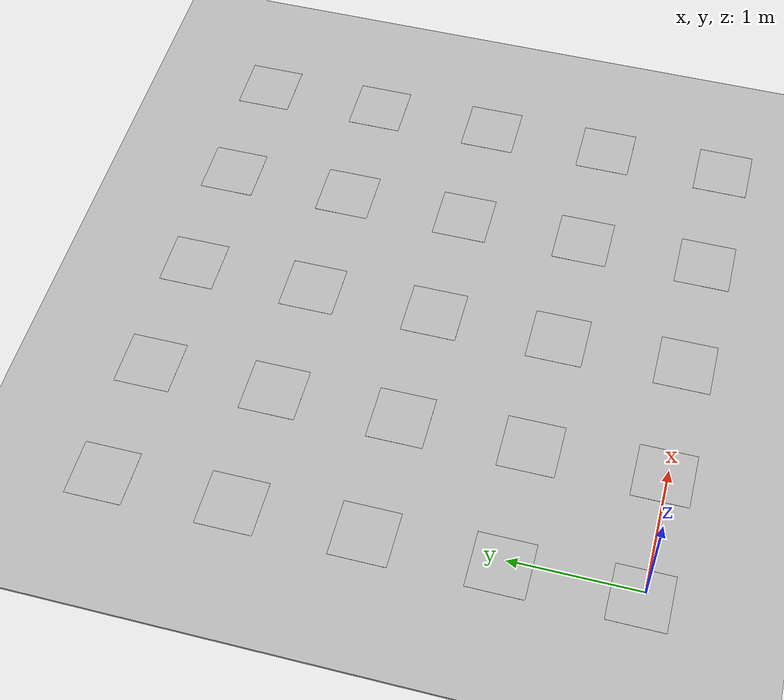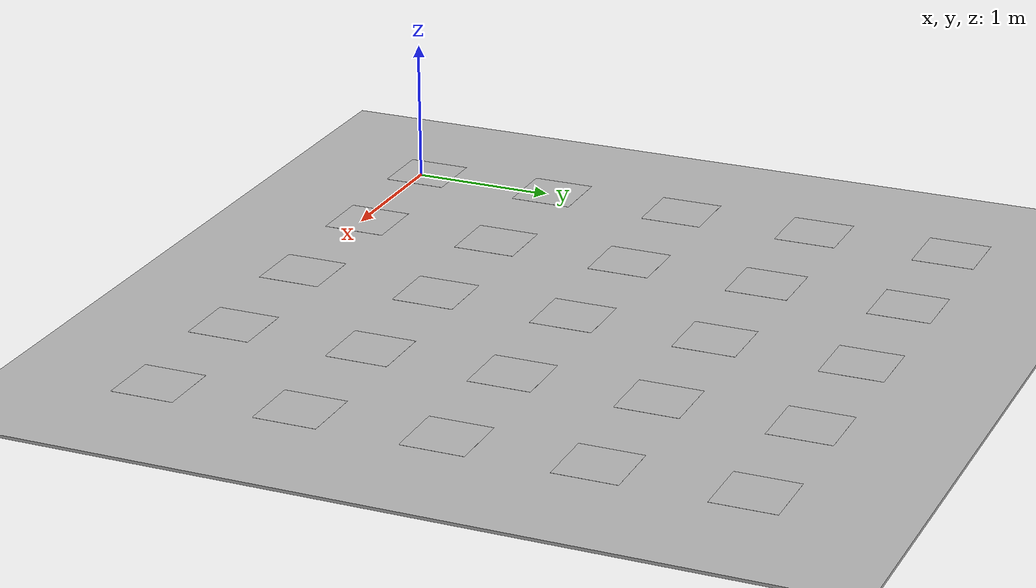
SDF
<sdf version="1.6">
 <world name="default">
  <light name="sun" type="directional">
   <pose>0 0 10 0 -0 0</pose>
   <diffuse>0.8 0.8 0.8 1</diffuse>
   <specular>0.2 0.2 0.2 1</specular>
   <attenuation>
    <range>1000</range>
    <constant>0.9</constant>
    <linear>0.01</linear>
    <quadratic>0.001</quadratic>
   </attenuation>
   <direction>-0.5 0.1 -0.9</direction>
  </light>
  <model name="parquet_plane">
   <static>1</static>
   <link name="link">
    <collision name="collision"><geometry><box><size>200 200 0.02</size></box></geometry></collision>
    <visual name="visual">
     <cast_shadows>0</cast_shadows>
     <geometry><box><size>200 200 0.02</size></box></geometry>
     <material>
      <script>
       <uri>model://parquet_plane/materials/scripts</uri>
       <uri>model://parquet_plane/materials/textures</uri>
       <name>parquet</name>
      </script>
     </material>
    </visual>
   </link>
   <pose>0 0 -0.01 0 -0 0</pose>
  </model>
  <scene>
   <ambient>0.8 0.8 0.8 1</ambient>
   <background>0.8 0.9 1 1</background>
   <shadows>0</shadows>
   <grid>0</grid>
   <origin_visual>0</origin_visual>
  </scene>
  <physics name="default_physics" default="0" type="ode">
   <ode>
    <solver>
     <type>quick</type>
     <iters>10</iters>
     <sor>1.3</sor>
     <use_dynamic_moi_rescaling>0</use_dynamic_moi_rescaling>
    </solver>
    <constraints>
     <cfm>0</cfm>
     <erp>0.2</erp>
     <contact_max_correcting_vel>100</contact_max_correcting_vel>
     <contact_surface_layer>0.001</contact_surface_layer>
    </constraints>
   </ode>
   <max_step_size>0.004</max_step_size>
   <real_time_factor>1</real_time_factor>
   <real_time_update_rate>250</real_time_update_rate>
  </physics>
  <gravity>0 0 -9.8066</gravity>
  <magnetic_field>6e-06 2.3e-05 -4.2e-05</magnetic_field>
  <atmosphere type="adiabatic"/>
  <spherical_coordinates>
   <surface_model>EARTH_WGS84</surface_model>
   <latitude_deg>0</latitude_deg>
   <longitude_deg>0</longitude_deg>
   <elevation>0</elevation>
   <heading_deg>0</heading_deg>
  </spherical_coordinates>
  <model name="aruco_2_25">
   <static>1</static>
   <link name="aruco_2_25_link">
    <visual name="visual_marker_2_21">
     <pose>0 4 0 0 -0 1.5708</pose>
     <cast_shadows>0</cast_shadows>
     <geometry><box><size>0.44 0.44 0.001</size></box></geometry>
     <material>
      <script>
       <uri>model://aruco_Slava_Ivanov_txt/materials/scripts</uri>
       <uri>model://aruco_Slava_Ivanov_txt/materials/textures</uri>
       <name>aruco/marker_2_21</name>
      </script>
     </material>
    </visual>
    <visual name="visual_marker_2_22">
     <pose>1 4 0 0 -0 1.5708</pose>
     <cast_shadows>0</cast_shadows>
     <geometry><box><size>0.44 0.44 0.001</size></box></geometry>
     <material>
      <script>
       <uri>model://aruco_Slava_Ivanov_txt/materials/scripts</uri>
       <uri>model://aruco_Slava_Ivanov_txt/materials/textures</uri>
       <name>aruco/marker_2_22</name>
      </script>
     </material>
    </visual>
    <visual name="visual_marker_2_23">
     <pose>2 4 0 0 -0 1.5708</pose>
     <cast_shadows>0</cast_shadows>
     <geometry><box><size>0.44 0.44 0.001</size></box></geometry>
     <material>
      <script>
       <uri>model://aruco_Slava_Ivanov_txt/materials/scripts</uri>
       <uri>model://aruco_Slava_Ivanov_txt/materials/textures</uri>
       <name>aruco/marker_2_23</name>
      </script>
     </material>
    </visual>
    <visual name="visual_marker_2_24">
     <pose>3 4 0 0 -0 1.5708</pose>
     <cast_shadows>0</cast_shadows>
     <geometry><box><size>0.44 0.44 0.001</size></box></geometry>
     <material>
      <script>
       <uri>model://aruco_Slava_Ivanov_txt/materials/scripts</uri>
       <uri>model://aruco_Slava_Ivanov_txt/materials/textures</uri>
       <name>aruco/marker_2_24</name>
      </script>
     </material>
    </visual>
    <visual name="visual_marker_2_25">
     <pose>4 4 0 0 -0 1.5708</pose>
     <cast_shadows>0</cast_shadows>
     <geometry><box><size>0.44 0.44 0.001</size></box></geometry>
     <material>
      <script>
       <uri>model://aruco_Slava_Ivanov_txt/materials/scripts</uri>
       <uri>model://aruco_Slava_Ivanov_txt/materials/textures</uri>
       <name>aruco/marker_2_25</name>
      </script>
     </material>
    </visual>
    <visual name="visual_marker_2_46">
     <pose>0 3 0 0 -0 1.5708</pose>
     <cast_shadows>0</cast_shadows>
     <geometry><box><size>0.44 0.44 0.001</size></box></geometry>
     <material>
      <script>
       <uri>model://aruco_Slava_Ivanov_txt/materials/scripts</uri>
       <uri>model://aruco_Slava_Ivanov_txt/materials/textures</uri>
       <name>aruco/marker_2_46</name>
      </script>
     </material>
    </visual>
    <visual name="visual_marker_2_47">
     <pose>1 3 0 0 -0 1.5708</pose>
     <cast_shadows>0</cast_shadows>
     <geometry><box><size>0.44 0.44 0.001</size></box></geometry>
     <material>
      <script>
       <uri>model://aruco_Slava_Ivanov_txt/materials/scripts</uri>
       <uri>model://aruco_Slava_Ivanov_txt/materials/textures</uri>
       <name>aruco/marker_2_47</name>
      </script>
     </material>
    </visual>
    <visual name="visual_marker_2_48">
     <pose>2 3 0 0 -0 1.5708</pose>
     <cast_shadows>0</cast_shadows>
     <geometry><box><size>0.44 0.44 0.001</size></box></geometry>
     <material>
      <script>
       <uri>model://aruco_Slava_Ivanov_txt/materials/scripts</uri>
       <uri>model://aruco_Slava_Ivanov_txt/materials/textures</uri>
       <name>aruco/marker_2_48</name>
      </script>
     </material>
    </visual>
    <visual name="visual_marker_2_49">
     <pose>3 3 0 0 -0 1.5708</pose>
     <cast_shadows>0</cast_shadows>
     <geometry><box><size>0.44 0.44 0.001</size></box></geometry>
     <material>
      <script>
       <uri>model://aruco_Slava_Ivanov_txt/materials/scripts</uri>
       <uri>model://aruco_Slava_Ivanov_txt/materials/textures</uri>
       <name>aruco/marker_2_49</name>
      </script>
     </material>
    </visual>
    <visual name="visual_marker_2_50">
     <pose>4 3 0 0 -0 1.5708</pose>
     <cast_shadows>0</cast_shadows>
     <geometry><box><size>0.44 0.44 0.001</size></box></geometry>
     <material>
      <script>
       <uri>model://aruco_Slava_Ivanov_txt/materials/scripts</uri>
       <uri>model://aruco_Slava_Ivanov_txt/materials/textures</uri>
       <name>aruco/marker_2_50</name>
      </script>
     </material>
    </visual>
    <visual name="visual_marker_2_57">
     <pose>0 2 0 0 -0 1.5708</pose>
     <cast_shadows>0</cast_shadows>
     <geometry><box><size>0.44 0.44 0.001</size></box></geometry>
     <material>
      <script>
       <uri>model://aruco_Slava_Ivanov_txt/materials/scripts</uri>
       <uri>model://aruco_Slava_Ivanov_txt/materials/textures</uri>
       <name>aruco/marker_2_57</name>
      </script>
     </material>
    </visual>
    <visual name="visual_marker_2_58">
     <pose>1 2 0 0 -0 1.5708</pose>
     <cast_shadows>0</cast_shadows>
     <geometry><box><size>0.44 0.44 0.001</size></box></geometry>
     <material>
      <script>
       <uri>model://aruco_Slava_Ivanov_txt/materials/scripts</uri>
       <uri>model://aruco_Slava_Ivanov_txt/materials/textures</uri>
       <name>aruco/marker_2_58</name>
      </script>
     </material>
    </visual>
    <visual name="visual_marker_2_59">
     <pose>2 2 0 0 -0 1.5708</pose>
     <cast_shadows>0</cast_shadows>
     <geometry><box><size>0.44 0.44 0.001</size></box></geometry>
     <material>
      <script>
       <uri>model://aruco_Slava_Ivanov_txt/materials/scripts</uri>
       <uri>model://aruco_Slava_Ivanov_txt/materials/textures</uri>
       <name>aruco/marker_2_59</name>
      </script>
     </material>
    </visual>
    <visual name="visual_marker_2_60">
     <pose>3 2 0 0 -0 1.5708</pose>
     <cast_shadows>0</cast_shadows>
     <geometry><box><size>0.44 0.44 0.001</size></box></geometry>
     <material>
      <script>
       <uri>model://aruco_Slava_Ivanov_txt/materials/scripts</uri>
       <uri>model://aruco_Slava_Ivanov_txt/materials/textures</uri>
       <name>aruco/marker_2_60</name>
      </script>
     </material>
    </visual>
    <visual name="visual_marker_2_61">
     <pose>4 2 0 0 -0 1.5708</pose>
     <cast_shadows>0</cast_shadows>
     <geometry><box><size>0.44 0.44 0.001</size></box></geometry>
     <material>
      <script>
       <uri>model://aruco_Slava_Ivanov_txt/materials/scripts</uri>
       <uri>model://aruco_Slava_Ivanov_txt/materials/textures</uri>
       <name>aruco/marker_2_61</name>
      </script>
     </material>
    </visual>
    <visual name="visual_marker_2_68">
     <pose>0 1 0 0 -0 1.5708</pose>
     <cast_shadows>0</cast_shadows>
     <geometry><box><size>0.44 0.44 0.001</size></box></geometry>
     <material>
      <script>
       <uri>model://aruco_Slava_Ivanov_txt/materials/scripts</uri>
       <uri>model://aruco_Slava_Ivanov_txt/materials/textures</uri>
       <name>aruco/marker_2_68</name>
      </script>
     </material>
    </visual>
    <visual name="visual_marker_2_69">
     <pose>1 1 0 0 -0 1.5708</pose>
     <cast_shadows>0</cast_shadows>
     <geometry><box><size>0.44 0.44 0.001</size></box></geometry>
     <material>
      <script>
       <uri>model://aruco_Slava_Ivanov_txt/materials/scripts</uri>
       <uri>model://aruco_Slava_Ivanov_txt/materials/textures</uri>
       <name>aruco/marker_2_69</name>
      </script>
     </material>
    </visual>
    <visual name="visual_marker_2_70">
     <pose>2 1 0 0 -0 1.5708</pose>
     <cast_shadows>0</cast_shadows>
     <geometry><box><size>0.44 0.44 0.001</size></box></geometry>
     <material>
      <script>
       <uri>model://aruco_Slava_Ivanov_txt/materials/scripts</uri>
       <uri>model://aruco_Slava_Ivanov_txt/materials/textures</uri>
       <name>aruco/marker_2_70</name>
      </script>
     </material>
    </visual>
    <visual name="visual_marker_2_71">
     <pose>3 1 0 0 -0 1.5708</pose>
     <cast_shadows>0</cast_shadows>
     <geometry><box><size>0.44 0.44 0.001</size></box></geometry>
     <material>
      <script>
       <uri>model://aruco_Slava_Ivanov_txt/materials/scripts</uri>
       <uri>model://aruco_Slava_Ivanov_txt/materials/textures</uri>
       <name>aruco/marker_2_71</name>
      </script>
     </material>
    </visual>
    <visual name="visual_marker_2_72">
     <pose>4 1 0 0 -0 1.5708</pose>
     <cast_shadows>0</cast_shadows>
     <geometry><box><size>0.44 0.44 0.001</size></box></geometry>
     <material>
      <script>
       <uri>model://aruco_Slava_Ivanov_txt/materials/scripts</uri>
       <uri>model://aruco_Slava_Ivanov_txt/materials/textures</uri>
       <name>aruco/marker_2_72</name>
      </script>
     </material>
    </visual>
    <visual name="visual_marker_2_79">
     <pose>0 0 0 0 -0 1.5708</pose>
     <cast_shadows>0</cast_shadows>
     <geometry><box><size>0.44 0.44 0.001</size></box></geometry>
     <material>
      <script>
       <uri>model://aruco_Slava_Ivanov_txt/materials/scripts</uri>
       <uri>model://aruco_Slava_Ivanov_txt/materials/textures</uri>
       <name>aruco/marker_2_79</name>
      </script>
     </material>
    </visual>
    <visual name="visual_marker_2_80">
     <pose>1 0 0 0 -0 1.5708</pose>
     <cast_shadows>0</cast_shadows>
     <geometry><box><size>0.44 0.44 0.001</size></box></geometry>
     <material>
      <script>
       <uri>model://aruco_Slava_Ivanov_txt/materials/scripts</uri>
       <uri>model://aruco_Slava_Ivanov_txt/materials/textures</uri>
       <name>aruco/marker_2_80</name>
      </script>
     </material>
    </visual>
    <visual name="visual_marker_2_81">
     <pose>2 0 0 0 -0 1.5708</pose>
     <cast_shadows>0</cast_shadows>
     <geometry><box><size>0.44 0.44 0.001</size></box></geometry>
     <material>
      <script>
       <uri>model://aruco_Slava_Ivanov_txt/materials/scripts</uri>
       <uri>model://aruco_Slava_Ivanov_txt/materials/textures</uri>
       <name>aruco/marker_2_81</name>
      </script>
     </material>
    </visual>
    <visual name="visual_marker_2_82">
     <pose>3 0 0 0 -0 1.5708</pose>
     <cast_shadows>0</cast_shadows>
     <geometry><box><size>0.44 0.44 0.001</size></box></geometry>
     <material>
      <script>
       <uri>model://aruco_Slava_Ivanov_txt/materials/scripts</uri>
       <uri>model://aruco_Slava_Ivanov_txt/materials/textures</uri>
       <name>aruco/marker_2_82</name>
      </script>
     </material>
    </visual>
    <visual name="visual_marker_2_83">
     <pose>4 0 0 0 -0 1.5708</pose>
     <cast_shadows>0</cast_shadows>
     <geometry><box><size>0.44 0.44 0.001</size></box></geometry>
     <material>
      <script>
       <uri>model://aruco_Slava_Ivanov_txt/materials/scripts</uri>
       <uri>model://aruco_Slava_Ivanov_txt/materials/textures</uri>
       <name>aruco/marker_2_83</name>
      </script>
     </material>
    </visual>
   </link>
   <pose>-0.044413 0.026396 0 0 -0 0</pose>
  </model>
 </world>
</sdf>
